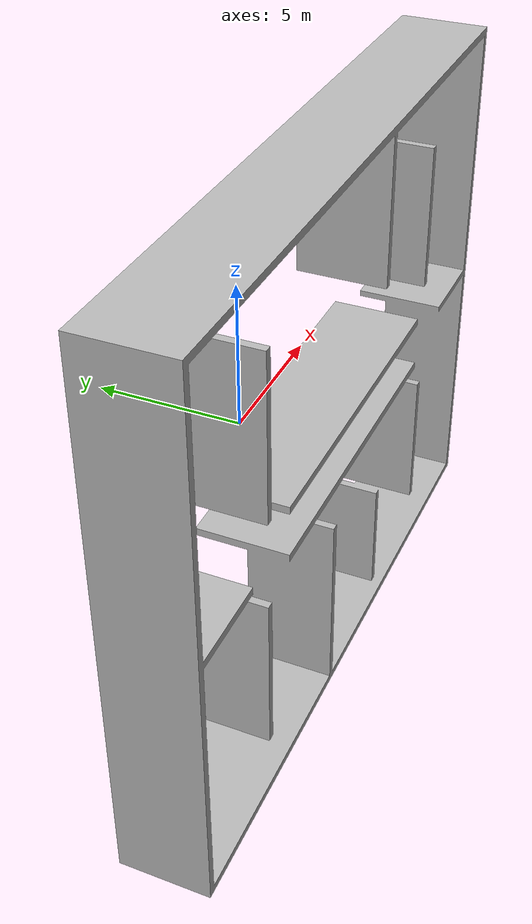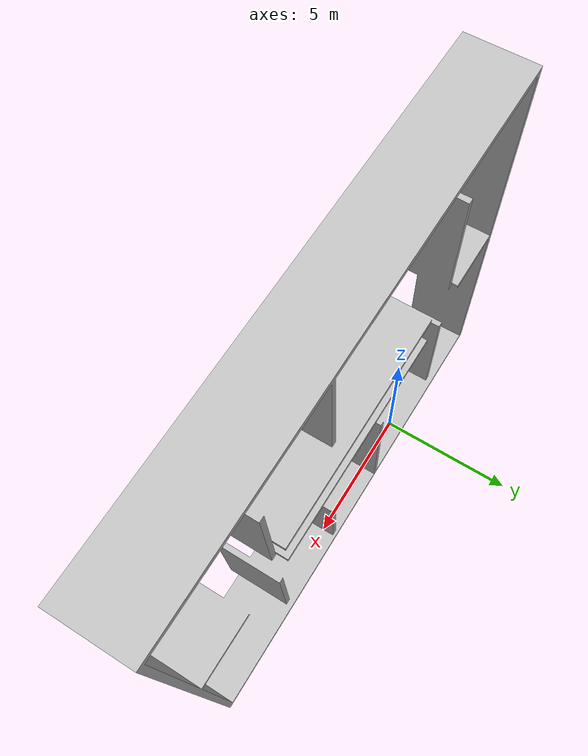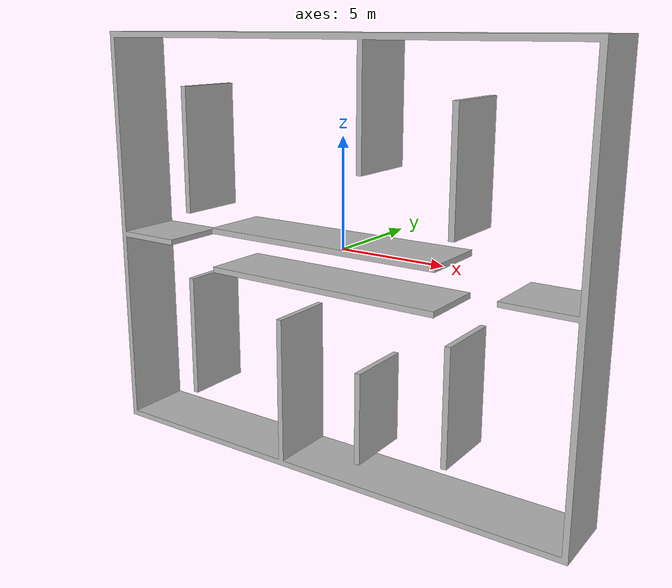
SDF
<sdf version="1.4">
 <world name="default">
  <light name="sun" type="directional">
   <pose>0 0 10 0 -0 0</pose>
   <diffuse>0.8 0.8 0.8 1</diffuse>
   <specular>0.2 0.2 0.2 1</specular>
   <attenuation>
    <range>1000</range>
    <constant>0.9</constant>
    <linear>0.01</linear>
    <quadratic>0.001</quadratic>
   </attenuation>
   <direction>-0.5 0.1 -0.9</direction>
  </light>
  <physics type="ode">
   <max_step_size>0.001</max_step_size>
   <real_time_factor>1</real_time_factor>
   <real_time_update_rate>1000</real_time_update_rate>
   <gravity>0 0 -9.8</gravity>
  </physics>
  <scene><ambient>0.4 0.4 0.4 1</ambient><background>0.7 0.7 0.7 1</background><shadows>1</shadows></scene>
  <spherical_coordinates>
   <surface_model>EARTH_WGS84</surface_model>
   <latitude_deg>0</latitude_deg>
   <longitude_deg>0</longitude_deg>
   <elevation>0</elevation>
   <heading_deg>0</heading_deg>
  </spherical_coordinates>
  <model name="room">
   <static>1</static>
   <link name="link">
    <collision name="collision">
     <geometry><mesh><uri>model://room/meshes/room.dae</uri></mesh></geometry>
    </collision>
    <visual name="visual"><geometry><mesh><uri>model://room/meshes/room.dae</uri></mesh></geometry></visual>
    <velocity_decay><linear>0</linear><angular>0</angular></velocity_decay>
   </link>
   <pose>1.07895 -0.629579 0.064969 1.57071 -0 0</pose>
  </model>
 </world>
</sdf>
